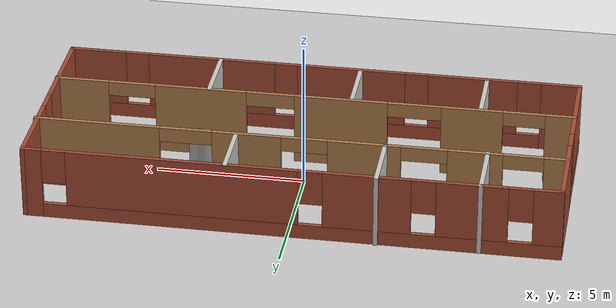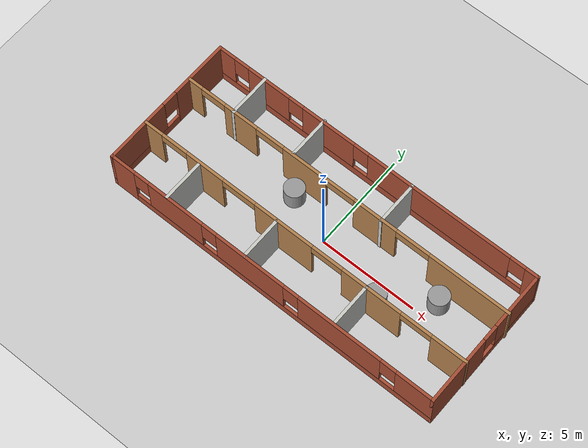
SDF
<sdf version="1.7">
 <world name="default">
  <light name="sun" type="directional">
   <pose>0 0 10 0 -0 0</pose>
   <diffuse>0.8 0.8 0.8 1</diffuse>
   <specular>0.2 0.2 0.2 1</specular>
   <attenuation>
    <range>1000</range>
    <constant>0.9</constant>
    <linear>0.01</linear>
    <quadratic>0.001</quadratic>
   </attenuation>
   <direction>-0.5 0.1 -0.9</direction>
   <spot><inner_angle>0</inner_angle><outer_angle>0</outer_angle><falloff>0</falloff></spot>
  </light>
  <model name="ground_plane">
   <static>1</static>
   <link name="link">
    <collision name="collision">
     <geometry><plane><normal>0 0 1</normal><size>100 100</size></plane></geometry>
     <surface>
      <contact><collide_bitmask>65535</collide_bitmask></contact>
      <friction><ode><mu>100</mu><mu2>50</mu2></ode></friction>
     </surface>
    </collision>
    <visual name="visual">
     <cast_shadows>0</cast_shadows>
     <geometry><plane><normal>0 0 1</normal><size>100 100</size></plane></geometry>
     <material>
      <script><uri>file://media/materials/scripts/gazebo.material</uri><name>Gazebo/Grey</name></script>
     </material>
    </visual>
   </link>
  </model>
  <gravity>0 0 -9.8</gravity>
  <magnetic_field>6e-06 2.3e-05 -4.2e-05</magnetic_field>
  <atmosphere type="adiabatic"/>
  <physics type="ode">
   <max_step_size>0.001</max_step_size>
   <real_time_factor>1</real_time_factor>
   <real_time_update_rate>1000</real_time_update_rate>
  </physics>
  <scene><ambient>0.4 0.4 0.4 1</ambient><background>0.7 0.7 0.7 1</background><shadows>1</shadows></scene>
  <spherical_coordinates>
   <surface_model>EARTH_WGS84</surface_model>
   <latitude_deg>0</latitude_deg>
   <longitude_deg>0</longitude_deg>
   <elevation>0</elevation>
   <heading_deg>0</heading_deg>
  </spherical_coordinates>
  <model name="Untitled">
   <pose>-0.051212 0.02649 0 0 -0 0</pose>
   <link name="Wall_0">
    <pose>-8.83 -0.03 0 0 -0 -1.5708</pose>
    <visual name="Wall_0_Visual_0">
     <pose>-2.0875 0 1.25 0 -0 0</pose>
     <geometry><box><size>3.075 0.15 2.5</size></box></geometry>
     <material>
      <script><uri>file://media/materials/scripts/gazebo.material</uri><name>Gazebo/Bricks</name></script>
      <ambient>1 1 1 1</ambient>
     </material>
     <meta><layer>0</layer></meta>
    </visual>
    <collision name="Wall_0_Collision_0">
     <geometry><box><size>3.075 0.15 2.5</size></box></geometry>
     <pose>-2.0875 0 1.25 0 -0 0</pose>
    </collision>
    <visual name="Wall_0_Visual_1">
     <pose>1.5375 0 0.25 0 -0 0</pose>
     <geometry><box><size>4.175 0.15 0.5</size></box></geometry>
     <material>
      <script><uri>file://media/materials/scripts/gazebo.material</uri><name>Gazebo/Bricks</name></script>
      <ambient>1 1 1 1</ambient>
     </material>
     <meta><layer>0</layer></meta>
    </visual>
    <collision name="Wall_0_Collision_1">
     <geometry><box><size>4.175 0.15 0.5</size></box></geometry>
     <pose>1.5375 0 0.25 0 -0 0</pose>
    </collision>
    <visual name="Wall_0_Visual_2">
     <pose>1.9375 0 1.5 0 -0 0</pose>
     <geometry><box><size>3.375 0.15 2</size></box></geometry>
     <material>
      <script><uri>file://media/materials/scripts/gazebo.material</uri><name>Gazebo/Bricks</name></script>
      <ambient>1 1 1 1</ambient>
     </material>
     <meta><layer>0</layer></meta>
    </visual>
    <collision name="Wall_0_Collision_2">
     <geometry><box><size>3.375 0.15 2</size></box></geometry>
     <pose>1.9375 0 1.5 0 -0 0</pose>
    </collision>
    <visual name="Wall_0_Visual_3">
     <pose>-0.15 0 1.9 0 -0 0</pose>
     <geometry><box><size>0.8 0.15 1.2</size></box></geometry>
     <material>
      <script><uri>file://media/materials/scripts/gazebo.material</uri><name>Gazebo/Bricks</name></script>
      <ambient>1 1 1 1</ambient>
     </material>
     <meta><layer>0</layer></meta>
    </visual>
    <collision name="Wall_0_Collision_3">
     <geometry><box><size>0.8 0.15 1.2</size></box></geometry>
     <pose>-0.15 0 1.9 0 -0 0</pose>
    </collision>
   </link>
   <link name="Wall_1">
    <pose>-0.03 -3.58 0 0 -0 0</pose>
    <visual name="Wall_1_Visual_0">
     <pose>-8.1875 0 1.25 0 -0 0</pose>
     <geometry><box><size>1.375 0.15 2.5</size></box></geometry>
     <material>
      <script><uri>file://media/materials/scripts/gazebo.material</uri><name>Gazebo/Bricks</name></script>
      <ambient>1 1 1 1</ambient>
     </material>
     <meta><layer>0</layer></meta>
    </visual>
    <collision name="Wall_1_Collision_0">
     <geometry><box><size>1.375 0.15 2.5</size></box></geometry>
     <pose>-8.1875 0 1.25 0 -0 0</pose>
    </collision>
    <visual name="Wall_1_Visual_1">
     <pose>0.6875 0 0.25 0 -0 0</pose>
     <geometry><box><size>16.375 0.15 0.5</size></box></geometry>
     <material>
      <script><uri>file://media/materials/scripts/gazebo.material</uri><name>Gazebo/Bricks</name></script>
      <ambient>1 1 1 1</ambient>
     </material>
     <meta><layer>0</layer></meta>
    </visual>
    <collision name="Wall_1_Collision_1">
     <geometry><box><size>16.375 0.15 0.5</size></box></geometry>
     <pose>0.6875 0 0.25 0 -0 0</pose>
    </collision>
    <visual name="Wall_1_Visual_2">
     <pose>-5.175 0 1.5 0 -0 0</pose>
     <geometry><box><size>3.05 0.15 2</size></box></geometry>
     <material>
      <script><uri>file://media/materials/scripts/gazebo.material</uri><name>Gazebo/Bricks</name></script>
      <ambient>1 1 1 1</ambient>
     </material>
     <meta><layer>0</layer></meta>
    </visual>
    <collision name="Wall_1_Collision_2">
     <geometry><box><size>3.05 0.15 2</size></box></geometry>
     <pose>-5.175 0 1.5 0 -0 0</pose>
    </collision>
    <visual name="Wall_1_Visual_3">
     <pose>-0.985 0 1.5 0 -0 0</pose>
     <geometry><box><size>3.73 0.15 2</size></box></geometry>
     <material>
      <script><uri>file://media/materials/scripts/gazebo.material</uri><name>Gazebo/Bricks</name></script>
      <ambient>1 1 1 1</ambient>
     </material>
     <meta><layer>0</layer></meta>
    </visual>
    <collision name="Wall_1_Collision_3">
     <geometry><box><size>3.73 0.15 2</size></box></geometry>
     <pose>-0.985 0 1.5 0 -0 0</pose>
    </collision>
    <visual name="Wall_1_Visual_4">
     <pose>3.885 0 1.5 0 -0 0</pose>
     <geometry><box><size>4.41 0.15 2</size></box></geometry>
     <material>
      <script><uri>file://media/materials/scripts/gazebo.material</uri><name>Gazebo/Bricks</name></script>
      <ambient>1 1 1 1</ambient>
     </material>
     <meta><layer>0</layer></meta>
    </visual>
    <collision name="Wall_1_Collision_4">
     <geometry><box><size>4.41 0.15 2</size></box></geometry>
     <pose>3.885 0 1.5 0 -0 0</pose>
    </collision>
    <visual name="Wall_1_Visual_5">
     <pose>7.8825 0 1.5 0 -0 0</pose>
     <geometry><box><size>1.985 0.15 2</size></box></geometry>
     <material>
      <script><uri>file://media/materials/scripts/gazebo.material</uri><name>Gazebo/Bricks</name></script>
      <ambient>1 1 1 1</ambient>
     </material>
     <meta><layer>0</layer></meta>
    </visual>
    <collision name="Wall_1_Collision_5">
     <geometry><box><size>1.985 0.15 2</size></box></geometry>
     <pose>7.8825 0 1.5 0 -0 0</pose>
    </collision>
    <visual name="Wall_1_Visual_6">
     <pose>-7.1 0 1.9 0 -0 0</pose>
     <geometry><box><size>0.8 0.15 1.2</size></box></geometry>
     <material>
      <script><uri>file://media/materials/scripts/gazebo.material</uri><name>Gazebo/Bricks</name></script>
      <ambient>1 1 1 1</ambient>
     </material>
     <meta><layer>0</layer></meta>
    </visual>
    <collision name="Wall_1_Collision_6">
     <geometry><box><size>0.8 0.15 1.2</size></box></geometry>
     <pose>-7.1 0 1.9 0 -0 0</pose>
    </collision>
    <visual name="Wall_1_Visual_7">
     <pose>-3.25 0 1.9 0 -0 0</pose>
     <geometry><box><size>0.8 0.15 1.2</size></box></geometry>
     <material>
      <script><uri>file://media/materials/scripts/gazebo.material</uri><name>Gazebo/Bricks</name></script>
      <ambient>1 1 1 1</ambient>
     </material>
     <meta><layer>0</layer></meta>
    </visual>
    <collision name="Wall_1_Collision_7">
     <geometry><box><size>0.8 0.15 1.2</size></box></geometry>
     <pose>-3.25 0 1.9 0 -0 0</pose>
    </collision>
    <visual name="Wall_1_Visual_8">
     <pose>1.28 0 1.9 0 -0 0</pose>
     <geometry><box><size>0.8 0.15 1.2</size></box></geometry>
     <material>
      <script><uri>file://media/materials/scripts/gazebo.material</uri><name>Gazebo/Bricks</name></script>
      <ambient>1 1 1 1</ambient>
     </material>
     <meta><layer>0</layer></meta>
    </visual>
    <collision name="Wall_1_Collision_8">
     <geometry><box><size>0.8 0.15 1.2</size></box></geometry>
     <pose>1.28 0 1.9 0 -0 0</pose>
    </collision>
    <visual name="Wall_1_Visual_9">
     <pose>6.49 0 1.9 0 -0 0</pose>
     <geometry><box><size>0.8 0.15 1.2</size></box></geometry>
     <material>
      <script><uri>file://media/materials/scripts/gazebo.material</uri><name>Gazebo/Bricks</name></script>
      <ambient>1 1 1 1</ambient>
     </material>
     <meta><layer>0</layer></meta>
    </visual>
    <collision name="Wall_1_Collision_9">
     <geometry><box><size>0.8 0.15 1.2</size></box></geometry>
     <pose>6.49 0 1.9 0 -0 0</pose>
    </collision>
   </link>
   <link name="Wall_11">
    <collision name="Wall_11_Collision">
     <geometry><box><size>2.25 0.15 2.5</size></box></geometry>
     <pose>0 0 1.25 0 -0 0</pose>
    </collision>
    <visual name="Wall_11_Visual">
     <pose>0 0 1.25 0 -0 0</pose>
     <geometry><box><size>2.25 0.15 2.5</size></box></geometry>
     <material>
      <script><uri>file://media/materials/scripts/gazebo.material</uri><name>Gazebo/CeilingTiled</name></script>
      <ambient>1 1 1 1</ambient>
     </material>
     <meta><layer>0</layer></meta>
    </visual>
    <pose>-1.34 -2.52 0 0 -0 -1.5708</pose>
   </link>
   <link name="Wall_13">
    <collision name="Wall_13_Collision">
     <geometry><box><size>2.25 0.15 2.5</size></box></geometry>
     <pose>0 0 1.25 0 -0 0</pose>
    </collision>
    <visual name="Wall_13_Visual">
     <pose>0 0 1.25 0 -0 0</pose>
     <geometry><box><size>2.25 0.15 2.5</size></box></geometry>
     <material>
      <script><uri>file://media/materials/scripts/gazebo.material</uri><name>Gazebo/CeilingTiled</name></script>
      <ambient>1 1 1 1</ambient>
     </material>
     <meta><layer>0</layer></meta>
    </visual>
    <pose>3.53 -2.49 0 0 -0 -1.5708</pose>
   </link>
   <link name="Wall_15">
    <collision name="Wall_15_Collision">
     <geometry><box><size>2.25 0.15 2.5</size></box></geometry>
     <pose>0 0 1.25 0 -0 0</pose>
    </collision>
    <visual name="Wall_15_Visual">
     <pose>0 0 1.25 0 -0 0</pose>
     <geometry><box><size>2.25 0.15 2.5</size></box></geometry>
     <material>
      <script><uri>file://media/materials/scripts/gazebo.material</uri><name>Gazebo/CeilingTiled</name></script>
      <ambient>1 1 1 1</ambient>
     </material>
     <meta><layer>0</layer></meta>
    </visual>
    <pose>-6.23 2.48 0 0 -0 -1.5708</pose>
   </link>
   <link name="Wall_18">
    <collision name="Wall_18_Collision">
     <geometry><box><size>2.25 0.15 2.5</size></box></geometry>
     <pose>0 0 1.25 0 -0 0</pose>
    </collision>
    <visual name="Wall_18_Visual">
     <pose>0 0 1.25 0 -0 0</pose>
     <geometry><box><size>2.25 0.15 2.5</size></box></geometry>
     <material>
      <script><uri>file://media/materials/scripts/gazebo.material</uri><name>Gazebo/CeilingTiled</name></script>
      <ambient>1 1 1 1</ambient>
     </material>
     <meta><layer>0</layer></meta>
    </visual>
    <pose>-2.87 2.53 0 0 -0 -1.5708</pose>
   </link>
   <link name="Wall_19">
    <collision name="Wall_19_Collision">
     <geometry><box><size>0.15 0.15 2.5</size></box></geometry>
     <pose>0 0 1.25 0 -0 0</pose>
    </collision>
    <visual name="Wall_19_Visual">
     <pose>0 0 1.25 0 -0 0</pose>
     <geometry><box><size>0.15 0.15 2.5</size></box></geometry>
     <material>
      <script><uri>file://media/materials/scripts/gazebo.material</uri><name>Gazebo/Grey</name></script>
      <ambient>1 1 1 1</ambient>
     </material>
     <meta><layer>0</layer></meta>
    </visual>
    <pose>-2.87 1.48 0 0 -0 0</pose>
   </link>
   <link name="Wall_2">
    <pose>8.77 -0.03 0 0 -0 1.5708</pose>
    <visual name="Wall_2_Visual_0">
     <pose>-1.8775 0 1.25 0 -0 0</pose>
     <geometry><box><size>3.495 0.15 2.5</size></box></geometry>
     <material>
      <script><uri>file://media/materials/scripts/gazebo.material</uri><name>Gazebo/Bricks</name></script>
      <ambient>1 1 1 1</ambient>
     </material>
     <meta><layer>0</layer></meta>
    </visual>
    <collision name="Wall_2_Collision_0">
     <geometry><box><size>3.495 0.15 2.5</size></box></geometry>
     <pose>-1.8775 0 1.25 0 -0 0</pose>
    </collision>
    <visual name="Wall_2_Visual_1">
     <pose>1.7475 0 0.25 0 -0 0</pose>
     <geometry><box><size>3.755 0.15 0.5</size></box></geometry>
     <material>
      <script><uri>file://media/materials/scripts/gazebo.material</uri><name>Gazebo/Bricks</name></script>
      <ambient>1 1 1 1</ambient>
     </material>
     <meta><layer>0</layer></meta>
    </visual>
    <collision name="Wall_2_Collision_1">
     <geometry><box><size>3.755 0.15 0.5</size></box></geometry>
     <pose>1.7475 0 0.25 0 -0 0</pose>
    </collision>
    <visual name="Wall_2_Visual_2">
     <pose>2.1475 0 1.5 0 -0 0</pose>
     <geometry><box><size>2.955 0.15 2</size></box></geometry>
     <material>
      <script><uri>file://media/materials/scripts/gazebo.material</uri><name>Gazebo/Bricks</name></script>
      <ambient>1 1 1 1</ambient>
     </material>
     <meta><layer>0</layer></meta>
    </visual>
    <collision name="Wall_2_Collision_2">
     <geometry><box><size>2.955 0.15 2</size></box></geometry>
     <pose>2.1475 0 1.5 0 -0 0</pose>
    </collision>
    <visual name="Wall_2_Visual_3">
     <pose>0.27 0 1.9 0 -0 0</pose>
     <geometry><box><size>0.8 0.15 1.2</size></box></geometry>
     <material>
      <script><uri>file://media/materials/scripts/gazebo.material</uri><name>Gazebo/Bricks</name></script>
      <ambient>1 1 1 1</ambient>
     </material>
     <meta><layer>0</layer></meta>
    </visual>
    <collision name="Wall_2_Collision_3">
     <geometry><box><size>0.8 0.15 1.2</size></box></geometry>
     <pose>0.27 0 1.9 0 -0 0</pose>
    </collision>
   </link>
   <link name="Wall_21">
    <collision name="Wall_21_Collision">
     <geometry><box><size>2.25 0.15 2.5</size></box></geometry>
     <pose>0 0 1.25 0 -0 0</pose>
    </collision>
    <visual name="Wall_21_Visual">
     <pose>0 0 1.25 0 -0 0</pose>
     <geometry><box><size>2.25 0.15 2.5</size></box></geometry>
     <material>
      <script><uri>file://media/materials/scripts/gazebo.material</uri><name>Gazebo/CeilingTiled</name></script>
      <ambient>1 1 1 1</ambient>
     </material>
     <meta><layer>0</layer></meta>
    </visual>
    <pose>2.07 2.46 0 0 -0 -1.5708</pose>
   </link>
   <link name="Wall_3">
    <pose>-0.03 3.52 0 0 -0 3.14159</pose>
    <visual name="Wall_3_Visual_0">
     <pose>-8.5275 0 1.25 0 -0 0</pose>
     <geometry><box><size>0.695 0.15 2.5</size></box></geometry>
     <material>
      <script><uri>file://media/materials/scripts/gazebo.material</uri><name>Gazebo/Bricks</name></script>
      <ambient>1 1 1 1</ambient>
     </material>
     <meta><layer>0</layer></meta>
    </visual>
    <collision name="Wall_3_Collision_0">
     <geometry><box><size>0.695 0.15 2.5</size></box></geometry>
     <pose>-8.5275 0 1.25 0 -0 0</pose>
    </collision>
    <visual name="Wall_3_Visual_1">
     <pose>0.3475 0 0.25 0 -0 0</pose>
     <geometry><box><size>17.055 0.15 0.5</size></box></geometry>
     <material>
      <script><uri>file://media/materials/scripts/gazebo.material</uri><name>Gazebo/Bricks</name></script>
      <ambient>1 1 1 1</ambient>
     </material>
     <meta><layer>0</layer></meta>
    </visual>
    <collision name="Wall_3_Collision_1">
     <geometry><box><size>17.055 0.15 0.5</size></box></geometry>
     <pose>0.3475 0 0.25 0 -0 0</pose>
    </collision>
    <visual name="Wall_3_Visual_2">
     <pose>-3.545 0 1.5 0 -0 0</pose>
     <geometry><box><size>7.67 0.15 2</size></box></geometry>
     <material>
      <script><uri>file://media/materials/scripts/gazebo.material</uri><name>Gazebo/Bricks</name></script>
      <ambient>1 1 1 1</ambient>
     </material>
     <meta><layer>0</layer></meta>
    </visual>
    <collision name="Wall_3_Collision_2">
     <geometry><box><size>7.67 0.15 2</size></box></geometry>
     <pose>-3.545 0 1.5 0 -0 0</pose>
    </collision>
    <visual name="Wall_3_Visual_3">
     <pose>2.53 0 1.5 0 -0 0</pose>
     <geometry><box><size>2.88 0.15 2</size></box></geometry>
     <material>
      <script><uri>file://media/materials/scripts/gazebo.material</uri><name>Gazebo/Bricks</name></script>
      <ambient>1 1 1 1</ambient>
     </material>
     <meta><layer>0</layer></meta>
    </visual>
    <collision name="Wall_3_Collision_3">
     <geometry><box><size>2.88 0.15 2</size></box></geometry>
     <pose>2.53 0 1.5 0 -0 0</pose>
    </collision>
    <visual name="Wall_3_Visual_4">
     <pose>5.935 0 1.5 0 -0 0</pose>
     <geometry><box><size>2.33 0.15 2</size></box></geometry>
     <material>
      <script><uri>file://media/materials/scripts/gazebo.material</uri><name>Gazebo/Bricks</name></script>
      <ambient>1 1 1 1</ambient>
     </material>
     <meta><layer>0</layer></meta>
    </visual>
    <collision name="Wall_3_Collision_4">
     <geometry><box><size>2.33 0.15 2</size></box></geometry>
     <pose>5.935 0 1.5 0 -0 0</pose>
    </collision>
    <visual name="Wall_3_Visual_5">
     <pose>8.3875 0 1.5 0 -0 0</pose>
     <geometry><box><size>0.975 0.15 2</size></box></geometry>
     <material>
      <script><uri>file://media/materials/scripts/gazebo.material</uri><name>Gazebo/Bricks</name></script>
      <ambient>1 1 1 1</ambient>
     </material>
     <meta><layer>0</layer></meta>
    </visual>
    <collision name="Wall_3_Collision_5">
     <geometry><box><size>0.975 0.15 2</size></box></geometry>
     <pose>8.3875 0 1.5 0 -0 0</pose>
    </collision>
    <visual name="Wall_3_Visual_6">
     <pose>-7.78 0 1.9 0 -0 0</pose>
     <geometry><box><size>0.8 0.15 1.2</size></box></geometry>
     <material>
      <script><uri>file://media/materials/scripts/gazebo.material</uri><name>Gazebo/Bricks</name></script>
      <ambient>1 1 1 1</ambient>
     </material>
     <meta><layer>0</layer></meta>
    </visual>
    <collision name="Wall_3_Collision_6">
     <geometry><box><size>0.8 0.15 1.2</size></box></geometry>
     <pose>-7.78 0 1.9 0 -0 0</pose>
    </collision>
    <visual name="Wall_3_Visual_7">
     <pose>0.69 0 1.9 0 -0 0</pose>
     <geometry><box><size>0.8 0.15 1.2</size></box></geometry>
     <material>
      <script><uri>file://media/materials/scripts/gazebo.material</uri><name>Gazebo/Bricks</name></script>
      <ambient>1 1 1 1</ambient>
     </material>
     <meta><layer>0</layer></meta>
    </visual>
    <collision name="Wall_3_Collision_7">
     <geometry><box><size>0.8 0.15 1.2</size></box></geometry>
     <pose>0.69 0 1.9 0 -0 0</pose>
    </collision>
    <visual name="Wall_3_Visual_8">
     <pose>4.37 0 1.9 0 -0 0</pose>
     <geometry><box><size>0.8 0.15 1.2</size></box></geometry>
     <material>
      <script><uri>file://media/materials/scripts/gazebo.material</uri><name>Gazebo/Bricks</name></script>
      <ambient>1 1 1 1</ambient>
     </material>
     <meta><layer>0</layer></meta>
    </visual>
    <collision name="Wall_3_Collision_8">
     <geometry><box><size>0.8 0.15 1.2</size></box></geometry>
     <pose>4.37 0 1.9 0 -0 0</pose>
    </collision>
    <visual name="Wall_3_Visual_9">
     <pose>7.5 0 1.9 0 -0 0</pose>
     <geometry><box><size>0.8 0.15 1.2</size></box></geometry>
     <material>
      <script><uri>file://media/materials/scripts/gazebo.material</uri><name>Gazebo/Bricks</name></script>
      <ambient>1 1 1 1</ambient>
     </material>
     <meta><layer>0</layer></meta>
    </visual>
    <collision name="Wall_3_Collision_9">
     <geometry><box><size>0.8 0.15 1.2</size></box></geometry>
     <pose>7.5 0 1.9 0 -0 0</pose>
    </collision>
   </link>
   <link name="Wall_5">
    <pose>-0.01 -1.41 0 0 -0 0</pose>
    <visual name="Wall_5_Visual_0">
     <pose>-8.36 0 1.25 0 -0 0</pose>
     <geometry><box><size>1.03 0.15 2.5</size></box></geometry>
     <material>
      <script><uri>file://media/materials/scripts/gazebo.material</uri><name>Gazebo/Wood</name></script>
      <ambient>1 1 1 1</ambient>
     </material>
     <meta><layer>0</layer></meta>
    </visual>
    <collision name="Wall_5_Collision_0">
     <geometry><box><size>1.03 0.15 2.5</size></box></geometry>
     <pose>-8.36 0 1.25 0 -0 0</pose>
    </collision>
    <visual name="Wall_5_Visual_1">
     <pose>-5.4 0 1.25 0 -0 0</pose>
     <geometry><box><size>2.07 0.15 2.5</size></box></geometry>
     <material>
      <script><uri>file://media/materials/scripts/gazebo.material</uri><name>Gazebo/Wood</name></script>
      <ambient>1 1 1 1</ambient>
     </material>
     <meta><layer>0</layer></meta>
    </visual>
    <collision name="Wall_5_Collision_1">
     <geometry><box><size>2.07 0.15 2.5</size></box></geometry>
     <pose>-5.4 0 1.25 0 -0 0</pose>
    </collision>
    <visual name="Wall_5_Visual_2">
     <pose>-0.97 0 1.25 0 -0 0</pose>
     <geometry><box><size>3.17 0.15 2.5</size></box></geometry>
     <material>
      <script><uri>file://media/materials/scripts/gazebo.material</uri><name>Gazebo/Wood</name></script>
      <ambient>1 1 1 1</ambient>
     </material>
     <meta><layer>0</layer></meta>
    </visual>
    <collision name="Wall_5_Collision_2">
     <geometry><box><size>3.17 0.15 2.5</size></box></geometry>
     <pose>-0.97 0 1.25 0 -0 0</pose>
    </collision>
    <visual name="Wall_5_Visual_3">
     <pose>3.825 0 1.25 0 -0 0</pose>
     <geometry><box><size>3.14 0.15 2.5</size></box></geometry>
     <material>
      <script><uri>file://media/materials/scripts/gazebo.material</uri><name>Gazebo/Wood</name></script>
      <ambient>1 1 1 1</ambient>
     </material>
     <meta><layer>0</layer></meta>
    </visual>
    <collision name="Wall_5_Collision_3">
     <geometry><box><size>3.14 0.15 2.5</size></box></geometry>
     <pose>3.825 0 1.25 0 -0 0</pose>
    </collision>
    <visual name="Wall_5_Visual_4">
     <pose>7.94 0 1.25 0 -0 0</pose>
     <geometry><box><size>1.87 0.15 2.5</size></box></geometry>
     <material>
      <script><uri>file://media/materials/scripts/gazebo.material</uri><name>Gazebo/Wood</name></script>
      <ambient>1 1 1 1</ambient>
     </material>
     <meta><layer>0</layer></meta>
    </visual>
    <collision name="Wall_5_Collision_4">
     <geometry><box><size>1.87 0.15 2.5</size></box></geometry>
     <pose>7.94 0 1.25 0 -0 0</pose>
    </collision>
    <visual name="Wall_5_Visual_5">
     <pose>-7.14 0 2.25 0 -0 0</pose>
     <geometry><box><size>1.41 0.15 0.5</size></box></geometry>
     <material>
      <script><uri>file://media/materials/scripts/gazebo.material</uri><name>Gazebo/Wood</name></script>
      <ambient>1 1 1 1</ambient>
     </material>
     <meta><layer>0</layer></meta>
    </visual>
    <collision name="Wall_5_Collision_5">
     <geometry><box><size>1.41 0.15 0.5</size></box></geometry>
     <pose>-7.14 0 2.25 0 -0 0</pose>
    </collision>
    <visual name="Wall_5_Visual_6">
     <pose>-3.46 0 2.25 0 -0 0</pose>
     <geometry><box><size>1.81 0.15 0.5</size></box></geometry>
     <material>
      <script><uri>file://media/materials/scripts/gazebo.material</uri><name>Gazebo/Wood</name></script>
      <ambient>1 1 1 1</ambient>
     </material>
     <meta><layer>0</layer></meta>
    </visual>
    <collision name="Wall_5_Collision_6">
     <geometry><box><size>1.81 0.15 0.5</size></box></geometry>
     <pose>-3.46 0 2.25 0 -0 0</pose>
    </collision>
    <visual name="Wall_5_Visual_7">
     <pose>1.435 0 2.25 0 -0 0</pose>
     <geometry><box><size>1.64 0.15 0.5</size></box></geometry>
     <material>
      <script><uri>file://media/materials/scripts/gazebo.material</uri><name>Gazebo/Wood</name></script>
      <ambient>1 1 1 1</ambient>
     </material>
     <meta><layer>0</layer></meta>
    </visual>
    <collision name="Wall_5_Collision_7">
     <geometry><box><size>1.64 0.15 0.5</size></box></geometry>
     <pose>1.435 0 2.25 0 -0 0</pose>
    </collision>
    <visual name="Wall_5_Visual_8">
     <pose>6.2 0 2.25 0 -0 0</pose>
     <geometry><box><size>1.61 0.15 0.5</size></box></geometry>
     <material>
      <script><uri>file://media/materials/scripts/gazebo.material</uri><name>Gazebo/Wood</name></script>
      <ambient>1 1 1 1</ambient>
     </material>
     <meta><layer>0</layer></meta>
    </visual>
    <collision name="Wall_5_Collision_8">
     <geometry><box><size>1.61 0.15 0.5</size></box></geometry>
     <pose>6.2 0 2.25 0 -0 0</pose>
    </collision>
   </link>
   <link name="Wall_7">
    <pose>0.03 1.44 0 0 -0 0</pose>
    <visual name="Wall_7_Visual_0">
     <pose>-8.4825 0 1.25 0 -0 0</pose>
     <geometry><box><size>0.785 0.15 2.5</size></box></geometry>
     <material>
      <script><uri>file://media/materials/scripts/gazebo.material</uri><name>Gazebo/Wood</name></script>
      <ambient>1 1 1 1</ambient>
     </material>
     <meta><layer>0</layer></meta>
    </visual>
    <collision name="Wall_7_Collision_0">
     <geometry><box><size>0.785 0.15 2.5</size></box></geometry>
     <pose>-8.4825 0 1.25 0 -0 0</pose>
    </collision>
    <visual name="Wall_7_Visual_1">
     <pose>-5.85 0 1.25 0 -0 0</pose>
     <geometry><box><size>1.82 0.15 2.5</size></box></geometry>
     <material>
      <script><uri>file://media/materials/scripts/gazebo.material</uri><name>Gazebo/Wood</name></script>
      <ambient>1 1 1 1</ambient>
     </material>
     <meta><layer>0</layer></meta>
    </visual>
    <collision name="Wall_7_Collision_1">
     <geometry><box><size>1.82 0.15 2.5</size></box></geometry>
     <pose>-5.85 0 1.25 0 -0 0</pose>
    </collision>
    <visual name="Wall_7_Visual_2">
     <pose>-2.2075 0 1.25 0 -0 0</pose>
     <geometry><box><size>2.425 0.15 2.5</size></box></geometry>
     <material>
      <script><uri>file://media/materials/scripts/gazebo.material</uri><name>Gazebo/Wood</name></script>
      <ambient>1 1 1 1</ambient>
     </material>
     <meta><layer>0</layer></meta>
    </visual>
    <collision name="Wall_7_Collision_2">
     <geometry><box><size>2.425 0.15 2.5</size></box></geometry>
     <pose>-2.2075 0 1.25 0 -0 0</pose>
    </collision>
    <visual name="Wall_7_Visual_3">
     <pose>1.7 0 1.25 0 -0 0</pose>
     <geometry><box><size>2.31 0.15 2.5</size></box></geometry>
     <material>
      <script><uri>file://media/materials/scripts/gazebo.material</uri><name>Gazebo/Wood</name></script>
      <ambient>1 1 1 1</ambient>
     </material>
     <meta><layer>0</layer></meta>
    </visual>
    <collision name="Wall_7_Collision_3">
     <geometry><box><size>2.31 0.15 2.5</size></box></geometry>
     <pose>1.7 0 1.25 0 -0 0</pose>
    </collision>
    <visual name="Wall_7_Visual_4">
     <pose>6.75 0 1.25 0 -0 0</pose>
     <geometry><box><size>4.25 0.15 2.5</size></box></geometry>
     <material>
      <script><uri>file://media/materials/scripts/gazebo.material</uri><name>Gazebo/Wood</name></script>
      <ambient>1 1 1 1</ambient>
     </material>
     <meta><layer>0</layer></meta>
    </visual>
    <collision name="Wall_7_Collision_4">
     <geometry><box><size>4.25 0.15 2.5</size></box></geometry>
     <pose>6.75 0 1.25 0 -0 0</pose>
    </collision>
    <visual name="Wall_7_Visual_5">
     <pose>-7.425 0 2.25 0 -0 0</pose>
     <geometry><box><size>1.33 0.15 0.5</size></box></geometry>
     <material>
      <script><uri>file://media/materials/scripts/gazebo.material</uri><name>Gazebo/Wood</name></script>
      <ambient>1 1 1 1</ambient>
     </material>
     <meta><layer>0</layer></meta>
    </visual>
    <collision name="Wall_7_Collision_5">
     <geometry><box><size>1.33 0.15 0.5</size></box></geometry>
     <pose>-7.425 0 2.25 0 -0 0</pose>
    </collision>
    <visual name="Wall_7_Visual_6">
     <pose>-4.18 0 2.25 0 -0 0</pose>
     <geometry><box><size>1.52 0.15 0.5</size></box></geometry>
     <material>
      <script><uri>file://media/materials/scripts/gazebo.material</uri><name>Gazebo/Wood</name></script>
      <ambient>1 1 1 1</ambient>
     </material>
     <meta><layer>0</layer></meta>
    </visual>
    <collision name="Wall_7_Collision_6">
     <geometry><box><size>1.52 0.15 0.5</size></box></geometry>
     <pose>-4.18 0 2.25 0 -0 0</pose>
    </collision>
    <visual name="Wall_7_Visual_7">
     <pose>-0.225 0 2.25 0 -0 0</pose>
     <geometry><box><size>1.54 0.15 0.5</size></box></geometry>
     <material>
      <script><uri>file://media/materials/scripts/gazebo.material</uri><name>Gazebo/Wood</name></script>
      <ambient>1 1 1 1</ambient>
     </material>
     <meta><layer>0</layer></meta>
    </visual>
    <collision name="Wall_7_Collision_7">
     <geometry><box><size>1.54 0.15 0.5</size></box></geometry>
     <pose>-0.225 0 2.25 0 -0 0</pose>
    </collision>
    <visual name="Wall_7_Visual_8">
     <pose>3.74 0 2.25 0 -0 0</pose>
     <geometry><box><size>1.77 0.15 0.5</size></box></geometry>
     <material>
      <script><uri>file://media/materials/scripts/gazebo.material</uri><name>Gazebo/Wood</name></script>
      <ambient>1 1 1 1</ambient>
     </material>
     <meta><layer>0</layer></meta>
    </visual>
    <collision name="Wall_7_Collision_8">
     <geometry><box><size>1.77 0.15 0.5</size></box></geometry>
     <pose>3.74 0 2.25 0 -0 0</pose>
    </collision>
   </link>
   <link name="Wall_9">
    <collision name="Wall_9_Collision">
     <geometry><box><size>2.25 0.15 2.5</size></box></geometry>
     <pose>0 0 1.25 0 -0 0</pose>
    </collision>
    <visual name="Wall_9_Visual">
     <pose>0 0 1.25 0 -0 0</pose>
     <geometry><box><size>2.25 0.15 2.5</size></box></geometry>
     <material>
      <script><uri>file://media/materials/scripts/gazebo.material</uri><name>Gazebo/CeilingTiled</name></script>
      <ambient>1 1 1 1</ambient>
     </material>
     <meta><layer>0</layer></meta>
    </visual>
    <pose>-5.69 -2.51 0 0 -0 -1.5708</pose>
   </link>
   <static>1</static>
  </model>
  <model name="unit_cylinder">
   <pose>-2.33732 0.847262 0.499998 3e-06 4e-06 -0</pose>
   <link name="link">
    <inertial>
     <mass>1</mass>
     <inertia><ixx>0.145833</ixx><ixy>0</ixy><ixz>0</ixz><iyy>0.145833</iyy><iyz>0</iyz><izz>0.125</izz></inertia>
    </inertial>
    <collision name="collision">
     <geometry><cylinder><radius>0.5</radius><length>1</length></cylinder></geometry>
    </collision>
    <visual name="visual">
     <geometry><cylinder><radius>0.5</radius><length>1</length></cylinder></geometry>
     <material>
      <script><name>Gazebo/Grey</name><uri>file://media/materials/scripts/gazebo.material</uri></script>
     </material>
    </visual>
   </link>
  </model>
  <model name="unit_cylinder_0">
   <pose>3.575 -0.803014 0.499997 3e-06 3e-06 0</pose>
   <link name="link">
    <inertial>
     <mass>1</mass>
     <inertia><ixx>0.145833</ixx><ixy>0</ixy><ixz>0</ixz><iyy>0.145833</iyy><iyz>0</iyz><izz>0.125</izz></inertia>
    </inertial>
    <collision name="collision">
     <geometry><cylinder><radius>0.5</radius><length>1</length></cylinder></geometry>
    </collision>
    <visual name="visual">
     <geometry><cylinder><radius>0.5</radius><length>1</length></cylinder></geometry>
     <material>
      <script><name>Gazebo/Grey</name><uri>file://media/materials/scripts/gazebo.material</uri></script>
     </material>
    </visual>
   </link>
  </model>
  <model name="unit_cylinder_1">
   <pose>5.72751 0.826312 0.499993 -3e-06 -4e-06 -0</pose>
   <link name="link">
    <inertial>
     <mass>1</mass>
     <inertia><ixx>0.145833</ixx><ixy>0</ixy><ixz>0</ixz><iyy>0.145833</iyy><iyz>0</iyz><izz>0.125</izz></inertia>
    </inertial>
    <collision name="collision">
     <geometry><cylinder><radius>0.5</radius><length>1</length></cylinder></geometry>
    </collision>
    <visual name="visual">
     <geometry><cylinder><radius>0.5</radius><length>1</length></cylinder></geometry>
     <material>
      <script><name>Gazebo/Grey</name><uri>file://media/materials/scripts/gazebo.material</uri></script>
     </material>
    </visual>
   </link>
  </model>
 </world>
</sdf>
